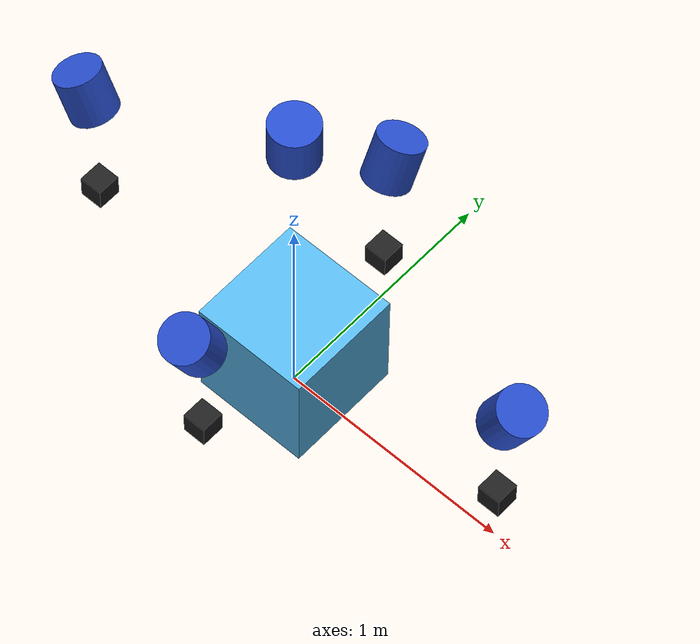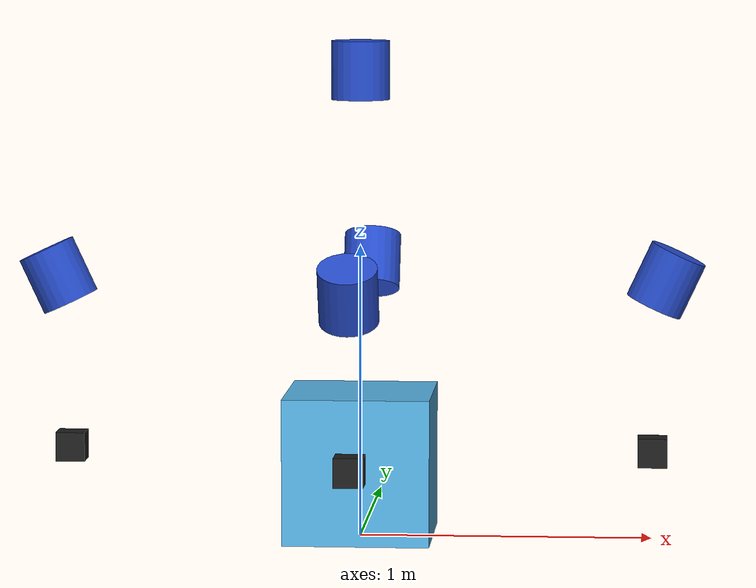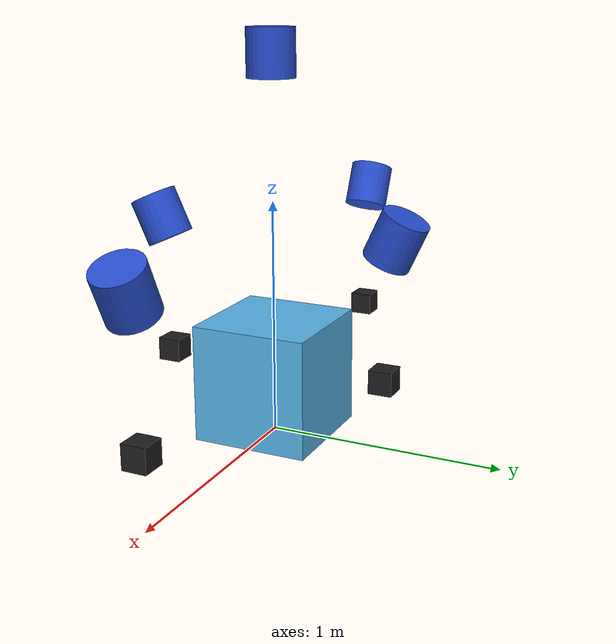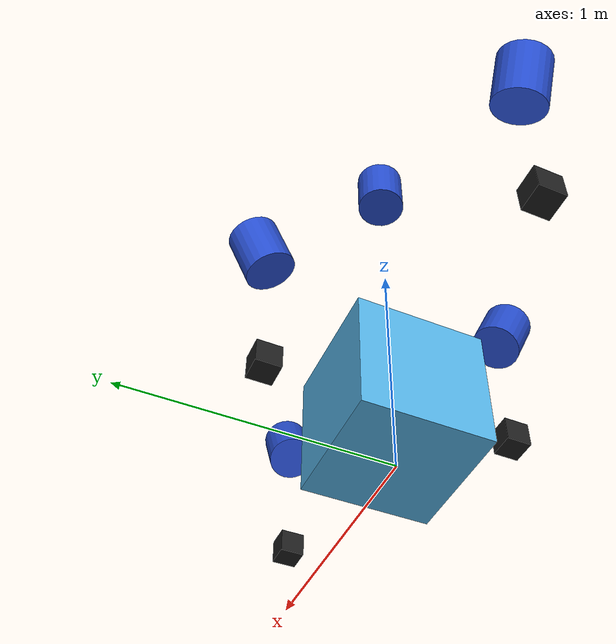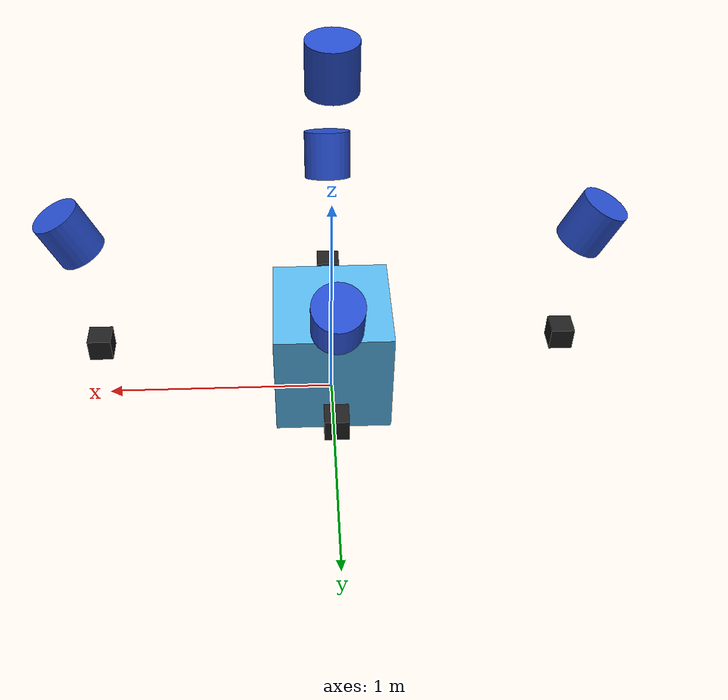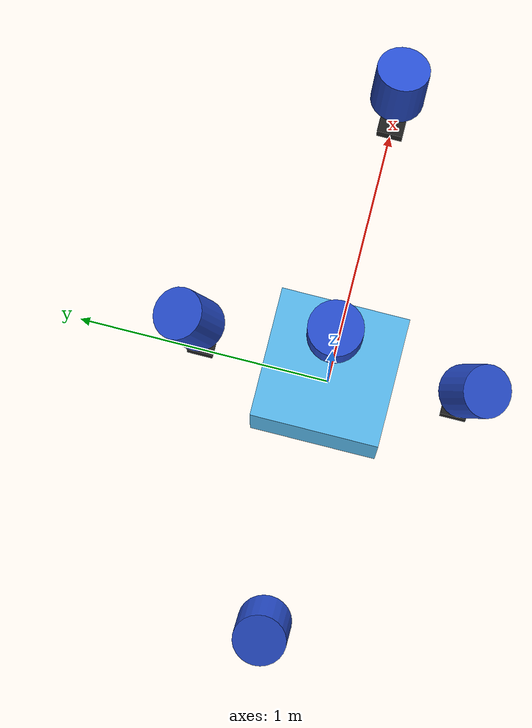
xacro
<?xml version="1.0"?>
<robot name="vehicle" xmlns:xacro="http://www.ros.org/wiki/xacro">
    <xacro:include filename="$(find simulation)/worlds/utils.xacro" />

    <link name="world"></link>

    <joint name="base_joint" type="fixed">
        <origin xyz="0 0 0" rpy="0 0 0" />
        <parent link="world" />
        <child link="base_link" />
        <origin xyz="0 0 0.0" rpy="0 0 0" />
    </joint>

    <!-- Base Link -->
    <link name="base_link">
        <visual name="base_link_visual">
            <origin xyz="0 0 0.25" rpy="0 0 0" />
            <geometry>
                <box size="0.5 0.5 0.5" />
            </geometry>
        </visual>
        <inertial>
            <origin rpy="0 0 0" xyz="0 0 0" />
            <mass value="1" />
            <inertia ixx="0.01" ixy="0.0" ixz="0.0" iyy="0.01" iyz="0.0" izz="0.01" />
        </inertial>
    </link>

    <xacro:include filename="camera_pinhole_bbox.xacro" />
    <xacro:camera_pinhole_macro name="top_view_camera_front" parent_link="base_link"
        hfov="140.0" width="640" height="480"
        x="1.0" y="0.0" z="0.3"
        roll="0.0" pitch="0.0" yaw="0.0"
    />
    <xacro:camera_pinhole_macro name="top_view_camera_left" parent_link="base_link"
        hfov="140.0" width="640" height="480"
        x="0.0" y="0.5" z="0.3"
        roll="0.0" pitch="0.0" yaw="90"
    />
    <xacro:camera_pinhole_macro name="top_view_camera_right" parent_link="base_link"
        hfov="140.0" width="640" height="480"
        x="0.0" y="-0.5" z="0.3"
        roll="0.0" pitch="0.0" yaw="-90"
    />
    <xacro:camera_pinhole_macro name="top_view_camera_rear" parent_link="base_link"
        hfov="140.0" width="640" height="480"
        x="-1.0" y="0.0" z="0.3"
        roll="0.0" pitch="0.0" yaw="180"
    />

    <xacro:include filename="lidar.xacro" />
    <xacro:lidar_macro name="ref_lidar" parent_link="base_link" x="0.0" y="0.0" z="1.5" roll="0.0" pitch="0.0" yaw="0.0" />
    <xacro:lidar_macro name="ref_lidar_front" parent_link="base_link" x="1.0" y="0.0" z="0.8" roll="0.0" pitch="25.0" yaw="0.0" />
    <xacro:lidar_macro name="ref_lidar_right" parent_link="base_link" x="0.0" y="-0.5" z="0.8" roll="0.0" pitch="25.0" yaw="-90" />
    <xacro:lidar_macro name="ref_lidar_rear" parent_link="base_link" x="-1.0" y="0.0" z="0.8" roll="0.0" pitch="25.0" yaw="180" />
    <xacro:lidar_macro name="ref_lidar_left" parent_link="base_link" x="0.0" y="0.5" z="0.8" roll="0.0" pitch="25.0" yaw="90" />

</robot>

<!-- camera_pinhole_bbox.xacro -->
<robot xmlns:xacro="http://www.ros.org/wiki/xacro">
    <xacro:include filename="$(find simulation)/worlds/utils.xacro" />
    <xacro:macro name="camera_pinhole_macro" params="name parent_link hfov width height x y z roll pitch yaw">

        <joint name="${name}_joint" type="fixed">
            <parent link="${parent_link}" />
            <child link="${name}_link" />
            <origin xyz="${x} ${y} ${z}" rpy="${roll * pi / 180.0} ${pitch * pi / 180.0} ${yaw * pi / 180.0}" />
        </joint>

        <link name="${name}_link">
            <visual name="${name}_visual">
                <geometry>
                    <box size="0.1 0.1 0.1" /> <!-- Example camera size -->
                </geometry>
            </visual>
        </link>

        <gazebo reference="${name}_link">
            <material>Gazebo/Black</material>

            <sensor name="${name}" type="boundingbox_camera">
                <camera>
                    <box_type>2d</box_type>
                    <horizontal_fov>${hfov * pi / 180.0}</horizontal_fov>
                    <image>
                        <width>${width}</width>
                        <height>${height}</height>
                    </image>
                    <clip>
                        <near>0.1</near>
                        <far>1000</far>
                    </clip>
                </camera>
                <always_on>1</always_on>
                <update_rate>10</update_rate>
                <visualize>true</visualize>
                <camera_info>
                    <topic>/camera/${name}/bbox/camera_info</topic>
                </camera_info>
                <topic>/camera/${name}/bbox</topic>
            </sensor>
        </gazebo>
    </xacro:macro>
</robot>

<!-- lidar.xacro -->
<robot xmlns:xacro="http://www.ros.org/wiki/xacro">
    <xacro:include filename="$(find simulation)/worlds/utils.xacro" />
    <xacro:macro name="lidar_macro" params="name parent_link x y z roll pitch yaw">

        <joint name="${name}_joint" type="fixed">
            <parent link="${parent_link}" />
            <child link="${name}_link" />
            <origin xyz="${x} ${y} ${z}" rpy="${roll * pi / 180.0} ${pitch * pi / 180.0} ${yaw * pi / 180.0}" />
        </joint>

        <link name="${name}_link">
            <visual>
                <geometry>
                    <cylinder radius="0.1" length="0.2" />
                </geometry>
                <material name="blue" />
                <origin xyz="0 0 0.1" rpy="0 0 0" />
            </visual>
        </link>

        <gazebo reference="${name}_link">
            <material>Gazebo/Red</material>
            <sensor name="${name}" type="gpu_lidar">
                <pose relative_to="${name}_link">0 0 0 0 0 0</pose>
                <topic>/lidar/${name}</topic>
                <gz_frame_id>${name}_link</gz_frame_id>
                <update_rate>10</update_rate>
                <ray>
                    <scan>
                        <horizontal>
                            <samples>640</samples>
                            <resolution>0.01</resolution>
                            <min_angle>-3.14</min_angle>
                            <max_angle>3.14</max_angle>
                        </horizontal>
                        <vertical>
                            <samples>50</samples>
                            <resolution>0.01</resolution>
                            <min_angle>-0.5</min_angle>
                            <max_angle>0.5</max_angle>
                        </vertical>
                    </scan>
                    <range>
                        <min>0.08</min>
                        <max>10.0</max>
                        <resolution>0.0001</resolution>
                    </range>
                </ray>
                <always_on>1</always_on>
                <visualize>false</visualize>
            </sensor>
        </gazebo>
    </xacro:macro>
</robot>
